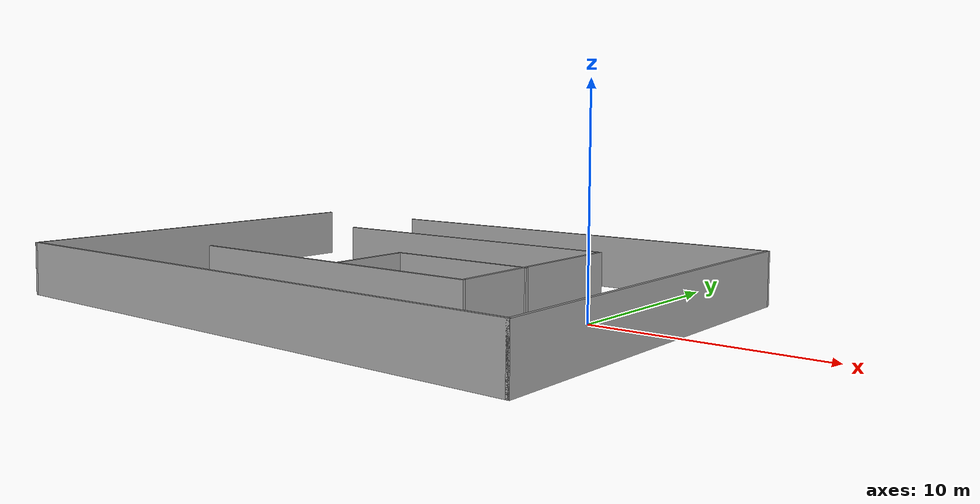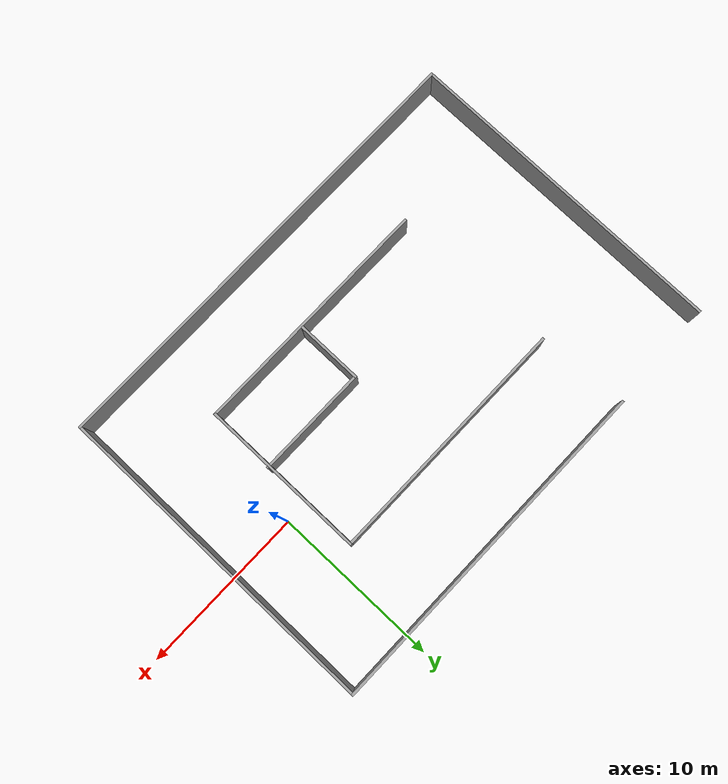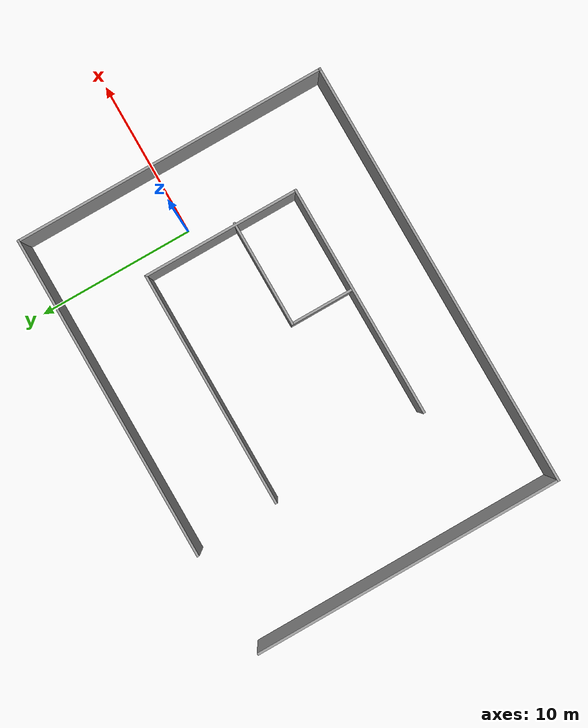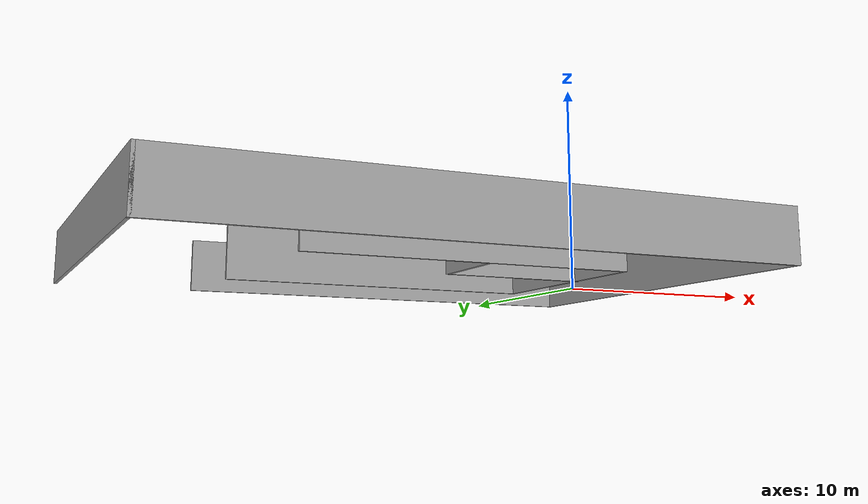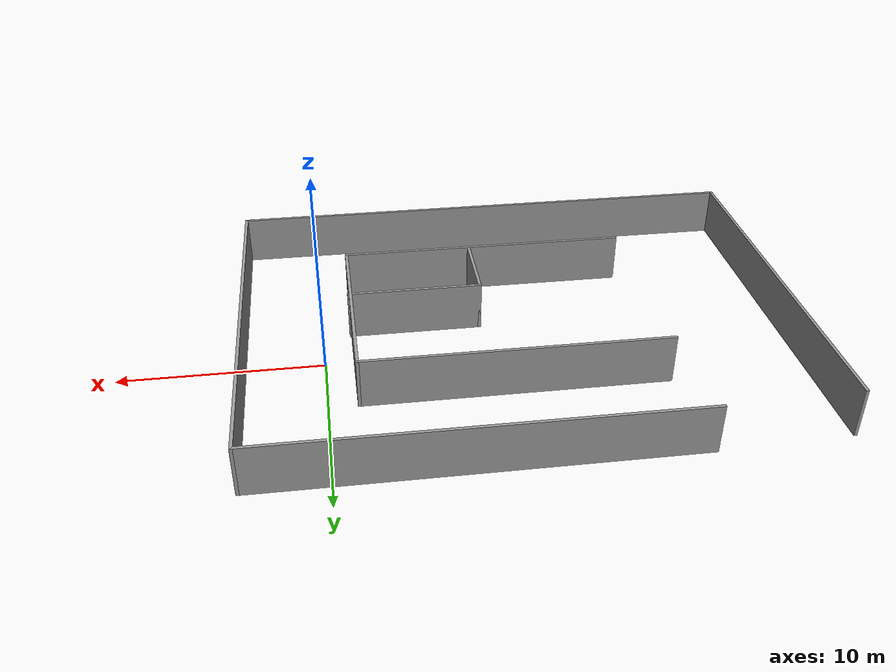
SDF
<?xml version='1.0'?>
<sdf version='1.7'>
  <model name='map'>
    <pose>-9.63942 -1.25494 0 0 -0 0</pose>
    <link name='Wall_10'>
      <collision name='Wall_10_Collision'>
        <geometry>
          <box>
            <size>20.75 0.15 2.5</size>
          </box>
        </geometry>
        <pose>0 0 1.25 0 -0 0</pose>
      </collision>
      <visual name='Wall_10_Visual'>
        <pose>0 0 1.25 0 -0 0</pose>
        <geometry>
          <box>
            <size>20.75 0.15 2.5</size>
          </box>
        </geometry>
        <material>
          <script>
            <uri>file://media/materials/scripts/gazebo.material</uri>
            <name>Gazebo/Grey</name>
          </script>
          <ambient>1 1 1 1</ambient>
        </material>
        <meta>
          <layer>0</layer>
        </meta>
      </visual>
      <pose>3.25 9.925 0 0 -0 3.14159</pose>
    </link>
    <link name='Wall_12'>
      <collision name='Wall_12_Collision'>
        <geometry>
          <box>
            <size>15 0.15 2.5</size>
          </box>
        </geometry>
        <pose>0 0 1.25 0 -0 0</pose>
      </collision>
      <visual name='Wall_12_Visual'>
        <pose>0 0 1.25 0 -0 0</pose>
        <geometry>
          <box>
            <size>15 0.15 2.5</size>
          </box>
        </geometry>
        <material>
          <script>
            <uri>file://media/materials/scripts/gazebo.material</uri>
            <name>Gazebo/Grey</name>
          </script>
          <ambient>1 1 1 1</ambient>
        </material>
        <meta>
          <layer>0</layer>
        </meta>
      </visual>
      <pose>0.76054 4.60389 0 0 -0 0</pose>
    </link>
    <link name='Wall_13'>
      <collision name='Wall_13_Collision'>
        <geometry>
          <box>
            <size>10 0.15 2.5</size>
          </box>
        </geometry>
        <pose>0 0 1.25 0 -0 0</pose>
      </collision>
      <visual name='Wall_13_Visual'>
        <pose>0 0 1.25 0 -0 0</pose>
        <geometry>
          <box>
            <size>10 0.15 2.5</size>
          </box>
        </geometry>
        <material>
          <script>
            <uri>file://media/materials/scripts/gazebo.material</uri>
            <name>Gazebo/Grey</name>
          </script>
          <ambient>1 1 1 1</ambient>
        </material>
        <meta>
          <layer>0</layer>
        </meta>
      </visual>
      <pose>8.18554 -0.321107 0 0 -0 -1.5708</pose>
    </link>
    <link name='Wall_14'>
      <collision name='Wall_14_Collision'>
        <geometry>
          <box>
            <size>14.75 0.15 2.5</size>
          </box>
        </geometry>
        <pose>0 0 1.25 0 -0 0</pose>
      </collision>
      <visual name='Wall_14_Visual'>
        <pose>0 0 1.25 0 -0 0</pose>
        <geometry>
          <box>
            <size>14.75 0.15 2.5</size>
          </box>
        </geometry>
        <material>
          <script>
            <uri>file://media/materials/scripts/gazebo.material</uri>
            <name>Gazebo/Grey</name>
          </script>
          <ambient>1 1 1 1</ambient>
        </material>
        <meta>
          <layer>0</layer>
        </meta>
      </visual>
      <pose>0.88554 -5.24611 0 0 -0 3.14159</pose>
    </link>
    <link name='Wall_16'>
      <collision name='Wall_16_Collision'>
        <geometry>
          <box>
            <size>4 0.15 2.5</size>
          </box>
        </geometry>
        <pose>0 0 1.25 0 -0 0</pose>
      </collision>
      <visual name='Wall_16_Visual'>
        <pose>0 0 1.25 0 -0 0</pose>
        <geometry>
          <box>
            <size>4 0.15 2.5</size>
          </box>
        </geometry>
        <material>
          <script>
            <uri>file://media/materials/scripts/gazebo.material</uri>
            <name>Gazebo/Grey</name>
          </script>
          <ambient>1 1 1 1</ambient>
        </material>
        <meta>
          <layer>0</layer>
        </meta>
      </visual>
      <pose>1.66332 -3.19461 0 0 -0 1.5708</pose>
    </link>
    <link name='Wall_17'>
      <collision name='Wall_17_Collision'>
        <geometry>
          <box>
            <size>6.75 0.15 2.5</size>
          </box>
        </geometry>
        <pose>0 0 1.25 0 -0 0</pose>
      </collision>
      <visual name='Wall_17_Visual'>
        <pose>0 0 1.25 0 -0 0</pose>
        <geometry>
          <box>
            <size>6.75 0.15 2.5</size>
          </box>
        </geometry>
        <material>
          <script>
            <uri>file://media/materials/scripts/gazebo.material</uri>
            <name>Gazebo/Grey</name>
          </script>
          <ambient>1 1 1 1</ambient>
        </material>
        <meta>
          <layer>0</layer>
        </meta>
      </visual>
      <pose>4.96332 -1.26961 0 0 -0 0</pose>
    </link>
    <link name='Wall_7'>
      <collision name='Wall_7_Collision'>
        <geometry>
          <box>
            <size>19.75 0.15 2.5</size>
          </box>
        </geometry>
        <pose>0 0 1.25 0 -0 0</pose>
      </collision>
      <visual name='Wall_7_Visual'>
        <pose>0 0 1.25 0 -0 0</pose>
        <geometry>
          <box>
            <size>19.75 0.15 2.5</size>
          </box>
        </geometry>
        <material>
          <script>
            <uri>file://media/materials/scripts/gazebo.material</uri>
            <name>Gazebo/Grey</name>
          </script>
          <ambient>1 1 1 1</ambient>
        </material>
        <meta>
          <layer>0</layer>
        </meta>
      </visual>
      <pose>-13.55 -0.125 0 0 -0 -1.5708</pose>
    </link>
    <link name='Wall_8'>
      <collision name='Wall_8_Collision'>
        <geometry>
          <box>
            <size>27.25 0.15 2.5</size>
          </box>
        </geometry>
        <pose>0 0 1.25 0 -0 0</pose>
      </collision>
      <visual name='Wall_8_Visual'>
        <pose>0 0 1.25 0 -0 0</pose>
        <geometry>
          <box>
            <size>27.25 0.15 2.5</size>
          </box>
        </geometry>
        <material>
          <script>
            <uri>file://media/materials/scripts/gazebo.material</uri>
            <name>Gazebo/Grey</name>
          </script>
          <ambient>1 1 1 1</ambient>
        </material>
        <meta>
          <layer>0</layer>
        </meta>
      </visual>
      <pose>0 -9.925 0 0 -0 0</pose>
    </link>
    <link name='Wall_9'>
      <collision name='Wall_9_Collision'>
        <geometry>
          <box>
            <size>20 0.15 2.5</size>
          </box>
        </geometry>
        <pose>0 0 1.25 0 -0 0</pose>
      </collision>
      <visual name='Wall_9_Visual'>
        <pose>0 0 1.25 0 -0 0</pose>
        <geometry>
          <box>
            <size>20 0.15 2.5</size>
          </box>
        </geometry>
        <material>
          <script>
            <uri>file://media/materials/scripts/gazebo.material</uri>
            <name>Gazebo/Grey</name>
          </script>
          <ambient>1 1 1 1</ambient>
        </material>
        <meta>
          <layer>0</layer>
        </meta>
      </visual>
      <pose>13.55 0 0 0 -0 1.5708</pose>
    </link>
    <static>1</static>
  </model>
</sdf>
